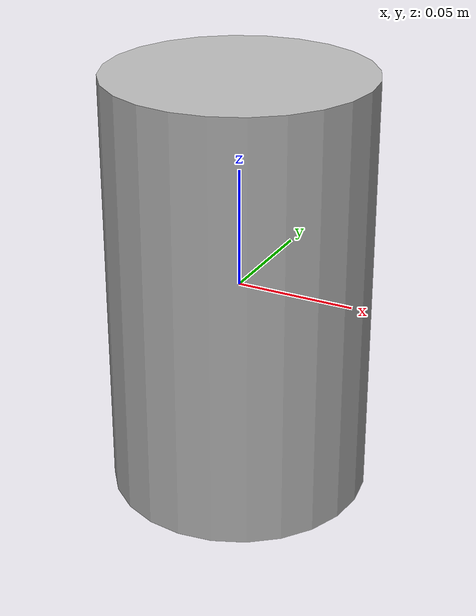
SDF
<?xml version="1.0" ?>
<sdf version="1.5">
  <model name="oats_can">
    <link name="link">
      <pose>0 0 0 0 0 0</pose>
      <inertial>
        <mass>0.390</mass>
        <inertia>
          <ixx>0.00058</ixx>
          <ixy>0</ixy>
          <ixz>0</ixz>
          <iyy>0.00058</iyy>
          <iyz>0</iyz>
          <izz>0.00019</izz>
        </inertia>
      </inertial>
      <collision name="collision">
        <geometry>
          <cylinder>
            <radius>0.055000</radius>
            <length>0.180000</length>
          </cylinder>
        </geometry>
      </collision>
      <visual name="visual">
        <geometry>
          <cylinder>
            <radius>0.055000</radius>
            <length>0.180000</length>
          </cylinder>
        </geometry>
        <material>
          <script>
            <uri>model://oats_can/materials/scripts</uri>
            <uri>model://oats_can/materials/textures</uri>
            <name>OatsCan/Diffuse</name>
          </script>
        </material>
      </visual>
    </link>
  </model>
</sdf>
